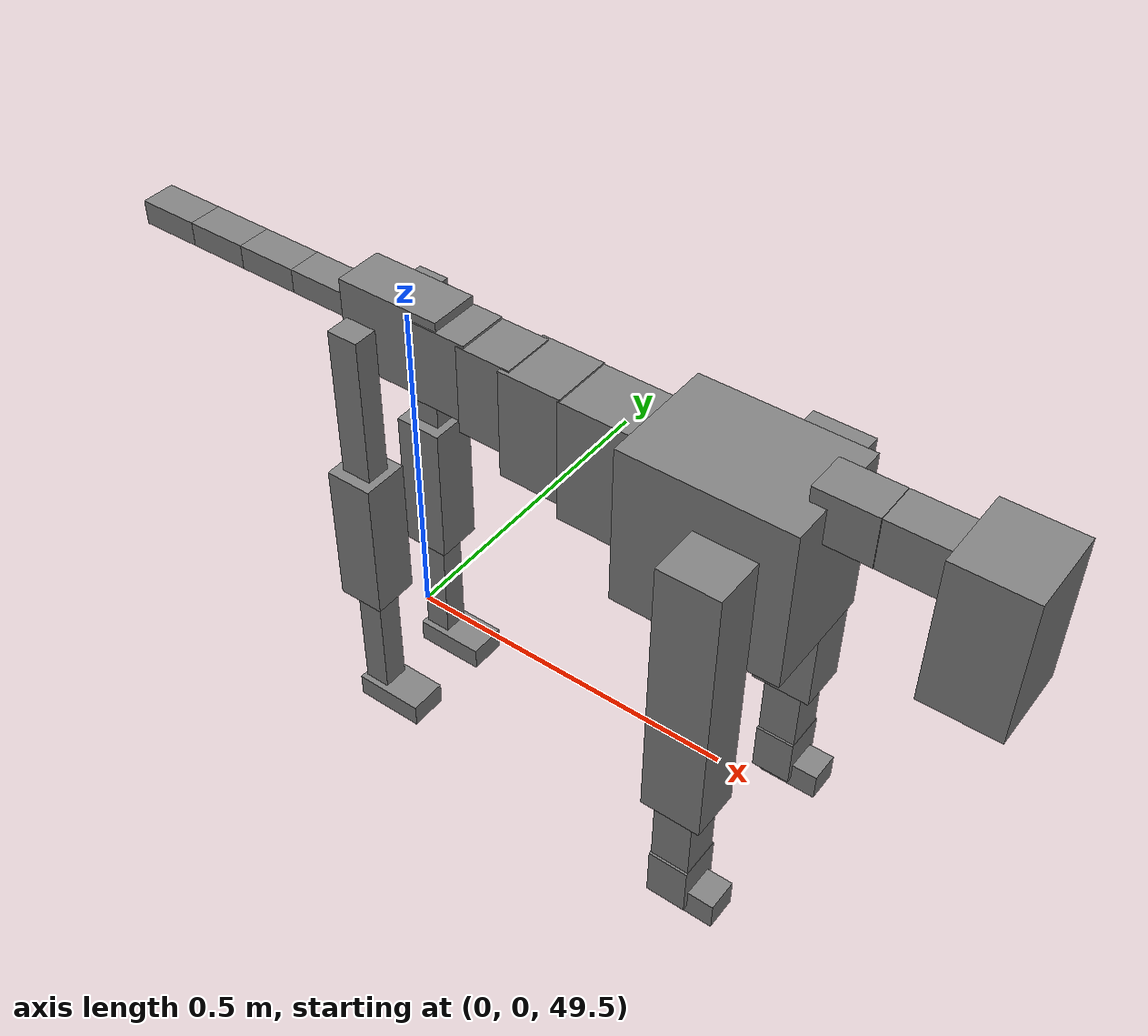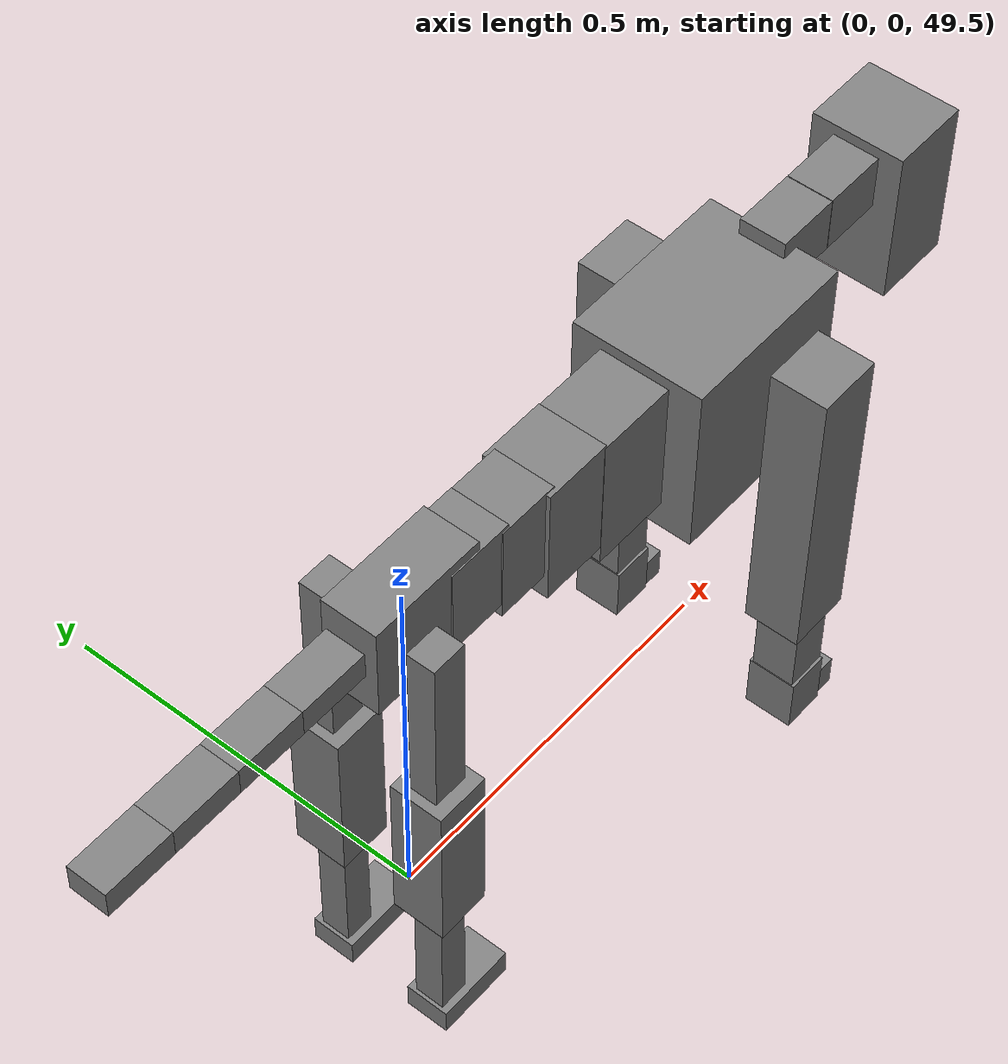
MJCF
<mujoco model="dog">

    <default>
        <joint armature="0.02" stiffness="1" damping="0.2" limited="true"/>
        <geom condim="3" friction="1 0.05 0.05" margin="0.01"/>
        <motor ctrllimited="true" ctrlrange="-1.0 1.0" forcelimited="true" gear="50"/>
    </default>

    <compiler inertiafromgeom="true" angle="radian"/>

    <option timestep="0.016" iterations="50" tolerance="1e-10" solver="Newton" jacobian="dense" cone="pyramidal"/>

    <size nconmax="20000" njmax="60000" nstack="5000000"/>
    <visual>
        <map force="0.1" zfar="30"/>
        <rgba haze="0.15 0.25 0.35 1"/>
        <quality shadowsize="2048"/>
        <global offwidth="800" offheight="800"/>
    </visual>

    <asset>
        <texture type="skybox" builtin="gradient" rgb1="0.3 0.5 0.7" rgb2="0 0 0" width="512" height="512"/>
        <texture name="texplane" type="2d" builtin="checker" rgb1=".2 .3 .4" rgb2=".1 0.15 0.2" width="512" height="512"
                 mark="cross" markrgb=".8 .8 .8"/>
        <texture name="texgeom" type="cube" builtin="flat" mark="cross" width="127" height="1278" rgb1="0.8 0.6 0.4"
                 rgb2="0.8 0.6 0.4" markrgb="1 1 1" random="0.01"/>

        <material name="matplane" reflectance="0.3" texture="texplane" texrepeat="1 1" texuniform="true"/>
        <material name="matgeom" texture="texgeom" texuniform="true" rgba="0.8 0.6 .4 1"/>
    </asset>

    <worldbody>
        <geom name="floor" pos="0 0 0" size="0 0 .25" type="plane" material="matplane" condim="3"/>

        <light directional="false" diffuse=".2 .2 .2" specular="0 0 0" pos="0 0 5" dir="0 0 -1" castshadow="false"/>
        <light mode="targetbodycom" target="torso" directional="false" diffuse=".8 .8 .8" specular="0.3 0.3 0.3"
               pos="0 0 4.0" dir="0 0 -1"/>

        <body name="root" pos="0 0 50">
            <freejoint name="root_1"/>
            <geom type="box" pos="0 0 -0.02" size="0.0774  0.0358  0.063" density="2030"/>

            <body name="spine1" pos="0.054 0 0">
                <joint name="spine1_y" axis="0 1 0" range="0 0.7" limited="true"/>
                <geom type="box" pos="0.02375 0 -0.03" size="0.04375  0.0375  0.05985" density="2030"/>

                <body name="spine2" pos="0.0612 0 0">
                    <joint name="spine2_y" axis="0 1 0" range="-0.15 0.15" limited="true"/>
                    <geom type="box" pos="0.03555  0  -0.04" size="0.04055  0.039  0.06615" density="2030"/>

                    <body name="spine3" pos="0.0730 0 0">
                        <joint name="spine3_y" axis="0 1 0" range="-0.15 0.15" limited="true"/>
                        <geom type="box" pos="0.03555  0  -0.057" size="0.04555  0.0445  0.081" density="2030"/>

                        <body name="spine4" pos="0.0780 0 0">
                            <joint name="spine4_y" axis="0 1 0" range="-0.15 0.15" limited="true"/>
                            <geom type="box" pos="0.05265  0  -0.07" size="0.05265  0.045  0.09135" density="2030"/>

                            <body name="torso" pos="0.1082 0 0">
                                <joint name="torso_y" axis="0 1 0" range="-0.15 0.15" limited="true"/>
                                <geom type="box" pos="0.11925  0  -0.085" size="0.11925  0.085  0.11745"
                                      density="2030"/>

                                <body name="neck1" pos="0.2160  0   0.0180">
                                    <joint name="neck1_y" axis="0 1 0" range="-1.2  -1" limited="true"/>
                                    <geom type="box" pos="0.0423  0  0" size="0.0423  0.03  0.036" density="2325"/>

                                    <body name="neck2" pos="0.0853  0  0">
                                        <joint name="neck2_y" axis="0 1 0" range="0.1  0" limited="true"/>
                                        <geom type="box" pos="0.0423  0  0" size="0.0423  0.03  0.036" density="2325"/>

                                        <body name="head" pos="0.0853  0  0">
                                            <joint name="head_y" axis="0 1 0" range="-0.3  -0.2" limited="true"/>
                                            <geom type="box" pos="0.0531  0  -0.055" size="0.0531  0.06  0.1044"
                                                  density="4030"/>

                                        </body>
                                    </body>
                                </body>

                                <body name="front_shoulder" pos="0.156  0   -0.0480">
                                    <joint name="front_shoulder_y" axis="0 1 0" range="-1 1.5" limited="true"/>
                                    <geom type="box" pos="0 0.13 -0.1756" size="0.0429  0.0366  0.2023" density="1158"/>
                                    <geom type="box" pos="0 -0.13 -0.1756" size="0.0429  0.0366  0.2023"
                                          density="1158"/>

                                    <body name="front_elbow" pos="0  0  -0.3513">
                                        <joint name="front_elbow_y" axis="0 1 0" range="-2 0" limited="true"/>
                                        <geom type="box" pos="0 0.13 -0.0701" size="0.0277  0.0283  0.0701"
                                              density="1081"/>
                                        <geom type="box" pos="0 -0.13 -0.0701" size="0.0277  0.0283  0.0701"
                                              density="1081"/>

                                        <body name="front_wrist" pos="0  0  -0.1402">
                                            <joint name="front_wrist_y" axis="0 1 0" range="-0.2 0" limited="true"/>
                                            <geom type="box" pos="0 0.13 -0.0248" size="0.0286  0.0317  0.0380"
                                                  density="1664"/>
                                            <geom type="box" pos="0 -0.13 -0.0248" size="0.0286  0.0317  0.0380"
                                                  density="1664"/>

                                            <body name="front_finger_end" pos="0  0  -0.0496">
                                                <joint name="front_finger_y" axis="0 1 0" range="-0.4 1"
                                                       limited="true"/>
                                                <geom type="box" pos="0.0234  0.13  -0.0058"
                                                      size="0.0430  0.0234  0.0208" density="1515"/>
                                                <geom type="box" pos="0.0234  -0.13  -0.0058"
                                                      size="0.0430  0.0234  0.0208" density="1515"/>

                                            </body>

                                        </body>
                                    </body>
                                </body>

                            </body>
                        </body>
                    </body>
                </body>
            </body>

            <body name="back_hip" pos="-0.03 0 -0.018">
                <joint name="back_hip_y" axis="0 1 0" range="-1.5 0.3" limited="true"/>
                <geom type="box" pos="0 0.07 -0.1087" size="0.0229  0.0180  0.1315" density="1154"/>
                <geom type="box" pos="0 -0.07 -0.1087" size="0.0229  0.0180  0.1315" density="1154"/>

                <body name="back_knee" pos="0  0  -0.2174">
                    <joint name="back_knee_y" axis="0 1 0" range="0 2.8" limited="true"/>
                    <geom type="box" pos="0 0.07 -0.0949" size="0.0349  0.0344  0.1104" density="1227"/>
                    <geom type="box" pos="0 -0.07 -0.0949" size="0.0349  0.0344  0.1104" density="1227"/>

                    <body name="back_ankle" pos="0  0  -0.1897">
                        <joint name="back_ankle_y" axis="0 1 0" range="-2.2 0" limited="true"/>
                        <geom type="box" pos="0 0.07 -0.1046" size="0.0193  0.0193  0.1159" density="1284"/>
                        <geom type="box" pos="0 -0.07 -0.1046" size="0.0193  0.0193  0.1159" density="1284"/>

                        <body name="back_toe_end" pos="0  0  -0.2092">
                            <joint name="back_toe_y" axis="0 1 0" range="-0.4 1" limited="true"/>
                            <geom type="box" pos="0.0285  0.07  -0.0025" size="0.0523  0.0285  0.0175" density="1515"/>
                            <geom type="box" pos="0.0285  -0.07  -0.0025" size="0.0523  0.0285  0.0175" density="1515"/>

                        </body>
                    </body>
                </body>
            </body>

            <body name="tail1" pos="-0.074 0 -0.006">
                <joint name="tail1_y" axis="0 1 0" range="-0.2 0.2" limited="true"/>
                <geom type="box" pos="-0.0536  0  0" size="0.045  0.025  0.0175" density="1587"/>

                <body name="tail2" pos="-0.09 0 0">
                    <joint name="tail2_y" axis="0 1 0" range="-0.2 0.2" limited="true"/>
                    <geom type="box" pos="-0.0536  0  0" size="0.045  0.025  0.0175" density="1587"/>

                    <body name="tail3" pos="-0.09 0 0">
                        <joint name="tail3_y" axis="0 1 0" range="-0.2 0.2" limited="true"/>
                        <geom type="box" pos="-0.0536  0  0" size="0.045  0.025  0.0175" density="1587"/>

                        <body name="tail4" pos="-0.09 0 0">
                            <joint name="tail4_y" axis="0 1 0" range="-0.2 0.2" limited="true"/>
                            <geom type="box" pos="-0.0536  0  0" size="0.045  0.025  0.0175" density="1587"/>

                        </body>
                    </body>
                </body>
            </body>
        </body>
    </worldbody>

    <actuator>
        <motor joint="spine1_y" forcerange="-150 150     "/>
        <motor joint="spine2_y" forcerange="-150 150     "/>
        <motor joint="spine3_y" forcerange="-150 150     "/>
        <motor joint="spine4_y" forcerange="-150 150     "/>
        <motor joint="torso_y" forcerange="-150 150     "/>
        <motor joint="neck1_y" forcerange="-100 100       "/>
        <motor joint="neck2_y" forcerange="-100 100       "/>
        <motor joint="head_y" forcerange="-150 150       "/>
        <motor joint="front_shoulder_y" forcerange="-184.49 159.74"/>
        <motor joint="front_elbow_y" forcerange="-120.33 185.49"/>
        <motor joint="front_wrist_y" forcerange="-145.78 108.01"/>
        <motor joint="front_finger_y" forcerange="-59.21 25.80"/>
        <motor joint="back_hip_y" forcerange="-208.01 231.91"/>
        <motor joint="back_knee_y" forcerange="-363.39 337.09"/>
        <motor joint="back_angle_y" forcerange="-85.68 122.59"/>
        <motor joint="back_toe_y" forcerange="-51.82 96.39"/>
        <motor joint="tail1_y" forcerange="-50 50     "/>
        <motor joint="tail2_y" forcerange="-50 50     "/>
        <motor joint="tail3_y" forcerange="-50 50     "/>
        <motor joint="tail4_y" forcerange="-50 50     "/>
    </actuator>
</mujoco>
